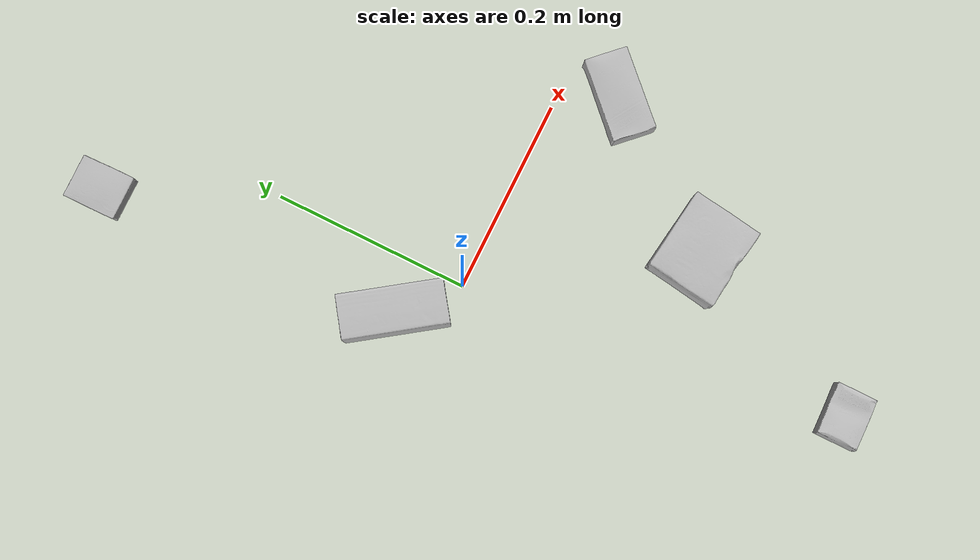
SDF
<sdf version="1.4">
  <world name="default">
    <light name="light1" type="point">
      <pose>0 0 1 0 0 0</pose>
      <diffuse>3 3 3 1</diffuse>
      <specular>3 3 3 1</specular>
    </light>
    <light name="light2" type="point">
      <pose>0 0.5 2 0 0 0</pose>
      <diffuse>1 1 1 1</diffuse>
      <specular>1 1 1 1</specular>
    </light>
    <light name="light3" type="point">
      <pose>0 0.5 2 0 0 0</pose>
      <diffuse>3 3 3 1</diffuse>
      <specular>3 3 3 1</specular>
    </light>
    <scene>
      <ambient>0.7 0.7 0.7</ambient>
    </scene>
    <model name="box1">
      <link name="link_box1">
        <collision name="default">
          <geometry>
            <mesh>
              <uri>model://gelatin_box/collision_meshes/collision.obj</uri>
              <scale>1.0 1.0 1.0</scale>
            </mesh>
          </geometry>
          <surface>
            <friction>
              <ode>
                <mu>0.5</mu>
                <mu2>0.5</mu2>
              </ode>
            </friction>
          <contact>
        <ode>
            <max_vel>0</max_vel>
            <min_depth>0.0001</min_depth>
            <kp>1e8</kp>
        </ode>
    </contact></surface>
        </collision>
        <visual name="default">
          <geometry>
            <mesh>
              <uri>model://gelatin_box/visual_meshes/visual.dae</uri>
              <scale>1.0 1.0 1.0</scale>
            </mesh>
          </geometry>
        </visual>
        <inertial>
          <mass>0.2001359760761261</mass>
          <pose>0.0004319618456065655 0.00011156872642459348 -0.00036403213744051754 -0.0010503718728910522 -0.00475581915504666 0.01644056319729456</pose>
          <inertia>
            <ixx>0.00014127967</ixx>
            <iyy>0.00010091532</iyy>
            <izz>0.00021505913</izz>
            <ixy>0</ixy>
            <ixz>0</ixz>
            <iyz>0</iyz>
          </inertia>
        </inertial>
      </link>
      <pose>0.1316663920879364 -0.19227121770381927 0.015168311074376106 0.005596589493548023 -0.007303569263040721 -1.726477106266574</pose>
    </model>
    <model name="box2">
      <link name="link_box2">
        <collision name="default">
          <geometry>
            <mesh>
              <uri>model://cracker_box/collision_meshes/collision.obj</uri>
              <scale>0.25 0.25 0.25</scale>
            </mesh>
          </geometry>
          <surface>
            <friction>
              <ode>
                <mu>0.5</mu>
                <mu2>0.5</mu2>
              </ode>
            </friction>
          <contact>
        <ode>
            <max_vel>0</max_vel>
            <min_depth>0.0001</min_depth>
            <kp>1e8</kp>
        </ode>
    </contact></surface>
        </collision>
        <visual name="default">
          <geometry>
            <mesh>
              <uri>model://cracker_box/visual_meshes/visual.dae</uri>
              <scale>0.25 0.25 0.25</scale>
            </mesh>
          </geometry>
        </visual>
        <inertial>
          <mass>0.052757441997528076</mass>
          <pose>0.00023660421720705926 6.358561950037256e-05 -0.0004257383698131889 -0.0003162076882876523 -0.011106491463043667 0.002546795002652857</pose>
          <inertia>
            <ixx>8.38696e-06</ixx>
            <iyy>1.384852e-05</iyy>
            <izz>1.9763109e-05</izz>
            <ixy>0</ixy>
            <ixz>0</ixz>
            <iyz>0</iyz>
          </inertia>
        </inertial>
      </link>
      <pose>0.04866715520620346 -0.37952667474746704 0.009120450355112553 -0.011788063753404118 -0.007367229492716364 -3.1414644135560645</pose>
    </model>
    <model name="box3">
      <link name="link_box3">
        <collision name="default">
          <geometry>
            <mesh>
              <uri>model://wood_block/collision_meshes/collision.obj</uri>
              <scale>0.5 0.5 0.5</scale>
            </mesh>
          </geometry>
          <surface>
            <friction>
              <ode>
                <mu>0.5</mu>
                <mu2>0.5</mu2>
              </ode>
            </friction>
          <contact>
        <ode>
            <max_vel>0</max_vel>
            <min_depth>0.0001</min_depth>
            <kp>1e8</kp>
        </ode>
    </contact></surface>
        </collision>
        <visual name="default">
          <geometry>
            <mesh>
              <uri>model://wood_block/visual_meshes/visual.dae</uri>
              <scale>0.5 0.5 0.5</scale>
            </mesh>
          </geometry>
        </visual>
        <inertial>
          <mass>0.15567830204963684</mass>
          <pose>-2.9066577553749084e-06 -0.000285404734313488 0.00013204292918089777 -0.052210429644919926 -0.005192696852900695 -0.006861378081336091</pose>
          <inertia>
            <ixx>5.2080282e-05</ixx>
            <iyy>0.00016452163</iyy>
            <izz>0.00016390622</izz>
            <ixy>0</ixy>
            <ixz>0</ixz>
            <iyz>0</iyz>
          </inertia>
        </inertial>
      </link>
      <pose>-0.05261172726750374 0.04654311016201973 0.022629262879490852 -0.0052083963647435415 0.005718787156178785 2.1904701235208313</pose>
    </model>
    <model name="box4">
      <link name="link_box4">
        <collision name="default">
          <geometry>
            <mesh>
              <uri>model://pudding_box/collision_meshes/collision.obj</uri>
              <scale>0.5 0.5 0.5</scale>
            </mesh>
          </geometry>
          <surface>
            <friction>
              <ode>
                <mu>0.5</mu>
                <mu2>0.5</mu2>
              </ode>
            </friction>
          <contact>
        <ode>
            <max_vel>0</max_vel>
            <min_depth>0.0001</min_depth>
            <kp>1e8</kp>
        </ode>
    </contact></surface>
        </collision>
        <visual name="default">
          <geometry>
            <mesh>
              <uri>model://pudding_box/visual_meshes/visual.dae</uri>
              <scale>0.5 0.5 0.5</scale>
            </mesh>
          </geometry>
        </visual>
        <inertial>
          <mass>0.0498165600001812</mass>
          <pose>0.00024474109522998333 0.00040339428232982755 -0.0002594413817860186 0.00521310227074754 -0.006603796865596143 0.02007982702575369</pose>
          <inertia>
            <ixx>1.4078764e-05</ixx>
            <iyy>9.472293e-06</iyy>
            <izz>2.0790974e-05</izz>
            <ixy>0</ixy>
            <ixz>0</ixz>
            <iyz>0</iyz>
          </inertia>
        </inertial>
      </link>
      <pose>-0.07160937786102295 0.35856661200523376 0.009862903505563736 0.022348481832653602 -0.0113917882501466 0.018492520957967298</pose>
    </model>
    <model name="box5">
      <link name="link_box5">
        <collision name="default">
          <geometry>
            <mesh>
              <uri>model://sugar_box/collision_meshes/collision.obj</uri>
              <scale>0.5 0.5 0.5</scale>
            </mesh>
          </geometry>
          <surface>
            <friction>
              <ode>
                <mu>0.5</mu>
                <mu2>0.5</mu2>
              </ode>
            </friction>
          <contact>
        <ode>
            <max_vel>0</max_vel>
            <min_depth>0.0001</min_depth>
            <kp>1e8</kp>
        </ode>
    </contact></surface>
        </collision>
        <visual name="default">
          <geometry>
            <mesh>
              <uri>model://sugar_box/visual_meshes/visual.dae</uri>
              <scale>0.5 0.5 0.5</scale>
            </mesh>
          </geometry>
        </visual>
        <inertial>
          <mass>0.08508674055337906</mass>
          <pose>0.0005171863595023751 1.924554817378521e-05 -0.00018182402709499002 -0.0004046257768003499 0.0010506634050152445 0.002615378556389427</pose>
          <inertia>
            <ixx>1.7723507e-05</ixx>
            <iyy>5.7286023e-05</iyy>
            <izz>6.85782e-05</izz>
            <ixy>0</ixy>
            <ixz>0</ixz>
            <iyz>0</iyz>
          </inertia>
        </inertial>
      </link>
      <pose>0.23712672293186188 -0.055301085114479065 0.011399303562939167 0.0007753176888968833 -0.023433255367915663 0.7776238762875503</pose>
    </model>
  <physics type="ode">
      <max_contacts>50</max_contacts>
      <ode>
        <solver>
          <type>quick</type>
          <iters>75</iters>
        </solver>
        <constraints>
          <contact_max_correcting_vel>0</contact_max_correcting_vel>
          <contact_surface_layer>0</contact_surface_layer>
        </constraints>
      </ode>
    </physics></world>
</sdf>
